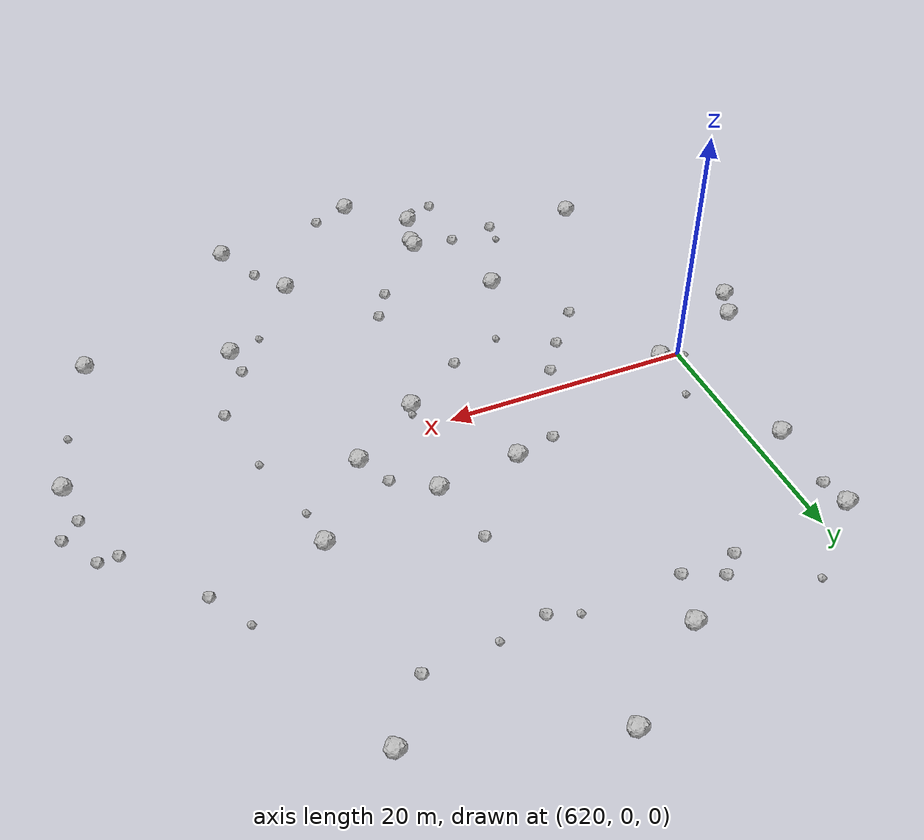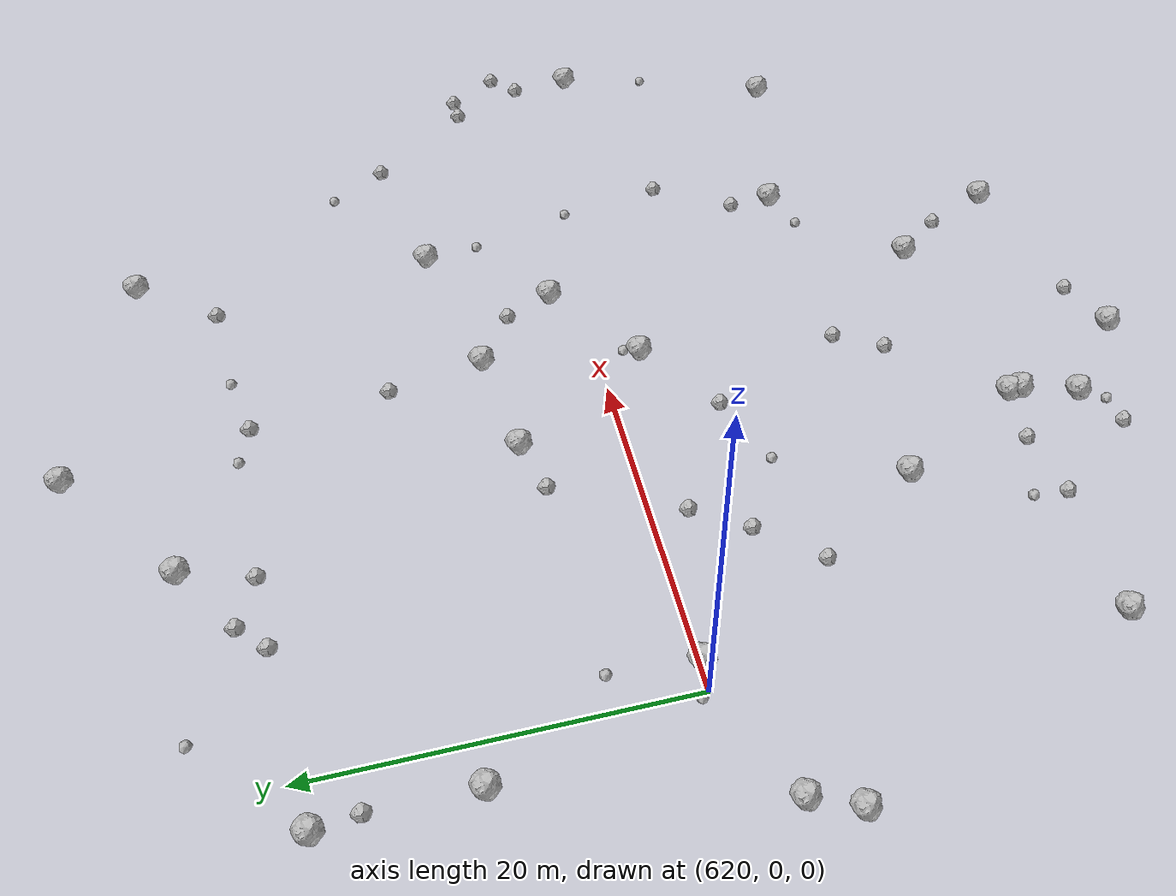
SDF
<sdf version="1.6">
 <world name="default">
  <include><uri>model://sun</uri></include>
  <model name="rock1_16_3">
   <include><uri>model://rock1</uri><pose>642.3082336623979 -2.4013824708454905 0.5 0 0 0</pose></include>
  </model>
  <model name="rock1_16_4">
   <include><uri>model://rock1</uri><pose>613.7661516866896 -2.5760303090970673 0.5 0 0 0</pose></include>
  </model>
  <model name="rock1_16_5">
   <include><uri>model://rock1</uri><pose>637.9459710610624 -29.746433115720144 0.5 0 0 0</pose></include>
  </model>
  <model name="rock1_16_6">
   <include><uri>model://rock1</uri><pose>648.0944894298968 1.6508178774649238 0.5 0 0 0</pose></include>
  </model>
  <model name="rock1_16_7">
   <include><uri>model://rock1</uri><pose>646.646938608969 -20.43890776898435 0.5 0 0 0</pose></include>
  </model>
  <model name="rock1_16_8">
   <include><uri>model://rock1</uri><pose>654.5477234832188 25.58394604242666 0.5 0 0 0</pose></include>
  </model>
  <model name="rock1_16_9">
   <include><uri>model://rock1</uri><pose>650.3806382929798 -27.049026068795154 0.5 0 0 0</pose></include>
  </model>
  <model name="rock1_16_10">
   <include><uri>model://rock1</uri><pose>619.3839539382099 -21.458134369002032 0.5 0 0 0</pose></include>
  </model>
  <model name="rock1_16_11">
   <include><uri>model://rock1</uri><pose>632.9992792174759 24.27883309267356 0.5 0 0 0</pose></include>
  </model>
  <model name="rock1_16_12">
   <include><uri>model://rock1</uri><pose>664.5367785391448 -16.72156389398501 0.5 0 0 0</pose></include>
  </model>
  <model name="rock1_16_13">
   <include><uri>model://rock1</uri><pose>630.1554583943665 -14.197279308948792 0.5 0 0 0</pose></include>
  </model>
  <model name="rock1_16_14">
   <include><uri>model://rock1</uri><pose>621.6937298054014 -0.09642343072503934 0.5 0 0 0</pose></include>
  </model>
  <model name="rock1_16_15">
   <include><uri>model://rock1</uri><pose>637.0737394026637 5.743520345378904 0.5 0 0 0</pose></include>
  </model>
  <model name="rock1_16_16">
   <include><uri>model://rock1</uri><pose>653.0107922398167 8.29078904332983 0.5 0 0 0</pose></include>
  </model>
  <model name="rock1_16_17">
   <include><uri>model://rock1</uri><pose>640.4261774019844 29.963844282713183 0.5 0 0 0</pose></include>
  </model>
  <model name="rock1_16_18">
   <include><uri>model://rock1</uri><pose>612.6509968658426 -5.018269168708862 0.5 0 0 0</pose></include>
  </model>
  <model name="rock1_16_19">
   <include><uri>model://rock1</uri><pose>617.7245421919421 11.253575318953168 0.5 0 0 0</pose></include>
  </model>
  <model name="rock1_16_20">
   <include><uri>model://rock1</uri><pose>668.7540642632774 -3.9721384756382996 0.5 0 0 0</pose></include>
  </model>
  <model name="rock1_16_21">
   <include><uri>model://rock1</uri><pose>617.5102888556714 19.227980914458662 0.5 0 0 0</pose></include>
  </model>
  <model name="rock1_16_22">
   <include><uri>model://rock1</uri><pose>634.3156769840804 -22.537765030210537 0.5 0 0 0</pose></include>
  </model>
  <model name="rock1_16_23">
   <include><uri>model://rock1</uri><pose>653.4053501387957 -13.910063836744225 0.5 0 0 0</pose></include>
  </model>
  <model name="rock1_16_24">
   <include><uri>model://rock1</uri><pose>643.7293430517348 6.5572702709235955 0.5 0 0 0</pose></include>
  </model>
  <model name="rock1_16_25">
   <include><uri>model://rock1</uri><pose>634.2744794146244 -21.792817501346736 0.5 0 0 0</pose></include>
  </model>
  <model name="rock1_16_26">
   <include><uri>model://rock1</uri><pose>633.3627738277368 -25.6132764076801 0.5 0 0 0</pose></include>
  </model>
  <model name="rock2_16_0">
   <include><uri>model://rock2</uri><pose>617.7806205617794 16.84945103765559 0.3 0 0 0</pose></include>
  </model>
  <model name="rock2_16_1">
   <include><uri>model://rock2</uri><pose>650.9859652660218 21.06099982921505 0.3 0 0 0</pose></include>
  </model>
  <model name="rock2_16_2">
   <include><uri>model://rock2</uri><pose>625.8226499165917 -7.994617316947171 0.3 0 0 0</pose></include>
  </model>
  <model name="rock2_16_3">
   <include><uri>model://rock2</uri><pose>646.7640752554044 4.433797647943393 0.3 0 0 0</pose></include>
  </model>
  <model name="rock2_16_4">
   <include><uri>model://rock2</uri><pose>640.6756609536088 -13.655052717968026 0.3 0 0 0</pose></include>
  </model>
  <model name="rock2_16_5">
   <include><uri>model://rock2</uri><pose>668.3263293076245 -0.4134240746939071 0.3 0 0 0</pose></include>
  </model>
  <model name="rock2_16_6">
   <include><uri>model://rock2</uri><pose>641.0754577959852 -28.547047403997794 0.3 0 0 0</pose></include>
  </model>
  <model name="rock2_16_7">
   <include><uri>model://rock2</uri><pose>628.8993203129403 21.6049706442122 0.3 0 0 0</pose></include>
  </model>
  <model name="rock2_16_8">
   <include><uri>model://rock2</uri><pose>630.7762083105961 -21.320117306004995 0.3 0 0 0</pose></include>
  </model>
  <model name="rock2_16_9">
   <include><uri>model://rock2</uri><pose>633.7450450543414 4.922662977244578 0.3 0 0 0</pose></include>
  </model>
  <model name="rock2_16_10">
   <include><uri>model://rock2</uri><pose>639.1445514400892 -16.273852068231665 0.3 0 0 0</pose></include>
  </model>
  <model name="rock2_16_11">
   <include><uri>model://rock2</uri><pose>661.7029078009651 9.832625680912102 0.3 0 0 0</pose></include>
  </model>
  <model name="rock2_16_12">
   <include><uri>model://rock2</uri><pose>655.8461589708364 -6.930755592253128 0.3 0 0 0</pose></include>
  </model>
  <model name="rock2_16_13">
   <include><uri>model://rock2</uri><pose>653.1658333937552 -11.339263574615465 0.3 0 0 0</pose></include>
  </model>
  <model name="rock2_16_14">
   <include><uri>model://rock2</uri><pose>637.2345027598793 -5.736243628154533 0.3 0 0 0</pose></include>
  </model>
  <model name="rock2_16_15">
   <include><uri>model://rock2</uri><pose>666.4175428086675 3.9185012136008766 0.3 0 0 0</pose></include>
  </model>
  <model name="rock2_16_16">
   <include><uri>model://rock2</uri><pose>628.5861522271916 -4.857517772063989 0.3 0 0 0</pose></include>
  </model>
  <model name="rock2_16_17">
   <include><uri>model://rock2</uri><pose>626.8489216766257 -21.846689359355366 0.3 0 0 0</pose></include>
  </model>
  <model name="rock2_16_18">
   <include><uri>model://rock2</uri><pose>630.6366148893743 -27.026131648400696 0.3 0 0 0</pose></include>
  </model>
  <model name="rock2_16_19">
   <include><uri>model://rock2</uri><pose>630.5387839644088 -1.97711516800738 0.3 0 0 0</pose></include>
  </model>
  <model name="rock2_16_20">
   <include><uri>model://rock2</uri><pose>642.558534808495 12.065415902906182 0.3 0 0 0</pose></include>
  </model>
  <model name="rock2_16_21">
   <include><uri>model://rock2</uri><pose>669.7850500772162 1.0135212234775004 0.3 0 0 0</pose></include>
  </model>
  <model name="rock2_16_22">
   <include><uri>model://rock2</uri><pose>631.6989671841926 20.351587233767773 0.3 0 0 0</pose></include>
  </model>
  <model name="rock2_16_23">
   <include><uri>model://rock2</uri><pose>641.6473113355529 19.8880130502871 0.3 0 0 0</pose></include>
  </model>
  <model name="rock2_16_24">
   <include><uri>model://rock2</uri><pose>667.9142051910513 3.9561401818969557 0.3 0 0 0</pose></include>
  </model>
  <model name="rock2_16_25">
   <include><uri>model://rock2</uri><pose>627.3832528144502 20.15808525233647 0.3 0 0 0</pose></include>
  </model>
  <model name="rock2_16_26">
   <include><uri>model://rock2</uri><pose>648.5593702238928 -23.1514287677387 0.3 0 0 0</pose></include>
  </model>
  <model name="rock3_16_0">
   <include><uri>model://rock3</uri><pose>659.6987575206823 13.073461633520296 0.2 0 0 0</pose></include>
  </model>
  <model name="rock3_16_1">
   <include><uri>model://rock3</uri><pose>627.0255654476963 -20.03035186636042 0.2 0 0 0</pose></include>
  </model>
  <model name="rock3_16_2">
   <include><uri>model://rock3</uri><pose>639.4268321787141 20.630182952472907 0.2 0 0 0</pose></include>
  </model>
  <model name="rock3_16_3">
   <include><uri>model://rock3</uri><pose>650.658541849867 -14.8452240634316 0.2 0 0 0</pose></include>
  </model>
  <model name="rock3_16_4">
   <include><uri>model://rock3</uri><pose>632.3842053792907 -26.96808296129245 0.2 0 0 0</pose></include>
  </model>
  <model name="rock3_16_5">
   <include><uri>model://rock3</uri><pose>632.8119644962565 -7.3580058654869305 0.2 0 0 0</pose></include>
  </model>
  <model name="rock3_16_6">
   <include><uri>model://rock3</uri><pose>642.5087247356051 -1.5693071869051387 0.2 0 0 0</pose></include>
  </model>
  <model name="rock3_16_7">
   <include><uri>model://rock3</uri><pose>621.9761207718312 4.587395937416346 0.2 0 0 0</pose></include>
  </model>
  <model name="rock3_16_8">
   <include><uri>model://rock3</uri><pose>645.3246629314997 20.61400848313813 0.2 0 0 0</pose></include>
  </model>
  <model name="rock3_16_9">
   <include><uri>model://rock3</uri><pose>667.3664294284926 -9.120636033144727 0.2 0 0 0</pose></include>
  </model>
  <model name="rock3_16_10">
   <include><uri>model://rock3</uri><pose>653.2609536817298 5.056534370620831 0.2 0 0 0</pose></include>
  </model>
  <model name="rock3_16_11">
   <include><uri>model://rock3</uri><pose>619.6895713547696 0.4258847826155474 0.2 0 0 0</pose></include>
  </model>
  <model name="rock3_16_12">
   <include><uri>model://rock3</uri><pose>623.0228064376059 24.27717687402533 0.2 0 0 0</pose></include>
  </model>
  <model name="rock3_16_13">
   <include><uri>model://rock3</uri><pose>654.9035536623809 -0.9068350688776192 0.2 0 0 0</pose></include>
  </model>
 </world>
</sdf>
